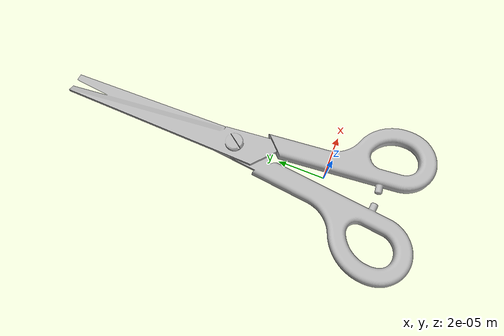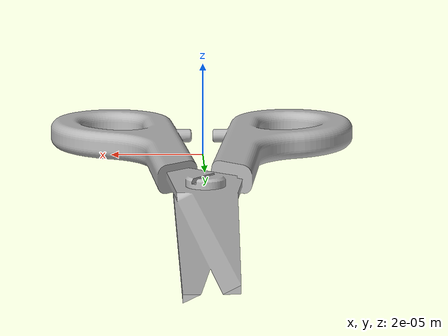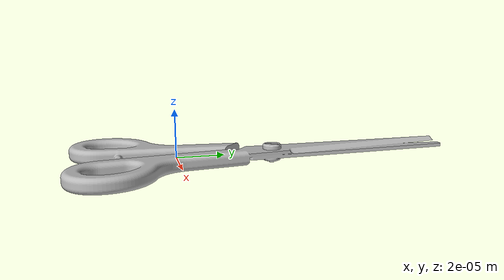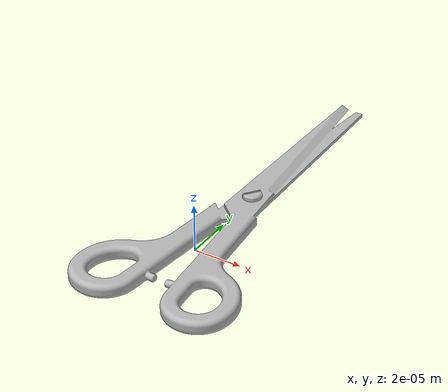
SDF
<?xml version="1.0"?>
<sdf version="1.6">

  <model name="scissor">

    <static>false</static>

    <link name="link">

      <gravity>true</gravity>
      <self_collide>false</self_collide>

      <!-- Correct inertia for ~150mm metal tool -->
      <inertial>
        <mass>0.18</mass>
        <inertia>
          <ixx>0.0004</ixx>
          <iyy>0.001</iyy>
          <izz>0.0012</izz>
          <ixy>0</ixy>
          <ixz>0</ixz>
          <iyz>0</iyz>
        </inertia>
      </inertial>

      <!-- damping removes micro vibrations -->
      <velocity_decay>
        <linear>0.05</linear>
        <angular>0.05</angular>
      </velocity_decay>

      <!-- VISUAL -->
      <visual name="visual">

        <geometry>
          <mesh>
            <uri>model://scissor/meshes/scissor.dae</uri>
            <scale>0.001 0.001 0.001</scale>
          </mesh>
        </geometry>

        <cast_shadows>true</cast_shadows>

      </visual>

      <!-- COLLISION -->
      <collision name="collision">

        <geometry>
          <box>
            <!-- slightly thicker than real object -->
            <size>0.13 0.02 0.15</size>
          </box>
        </geometry>

        <surface>

          <contact>
            <ode>
              <kp>1000000</kp>
              <kd>10</kd>
              <min_depth>0.001</min_depth>
              <max_vel>0.1</max_vel>
            </ode>
          </contact>

          <friction>
            <ode>
              <mu>3.0</mu>
              <mu2>3.0</mu2>
            </ode>
          </friction>

        </surface>

      </collision>

    </link>

  </model>

</sdf>
